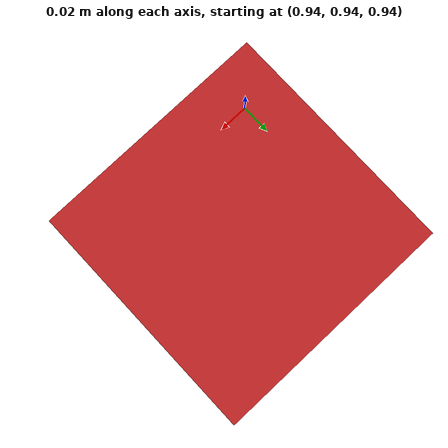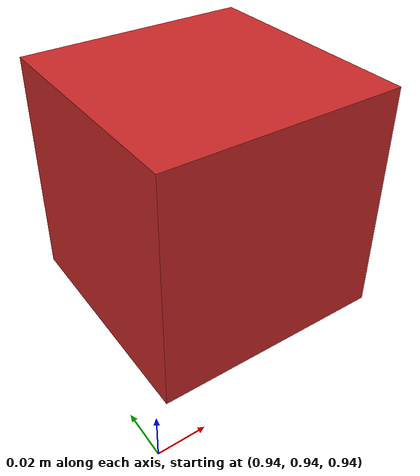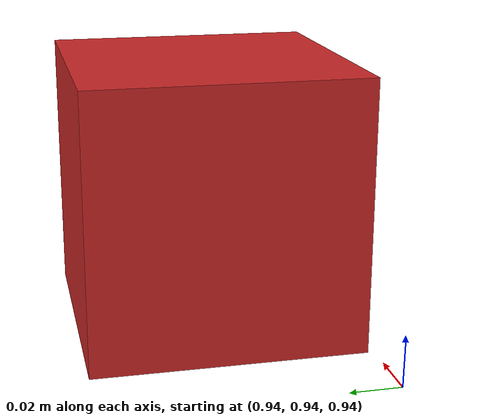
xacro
<?xml version="1.0"?>
<robot xmlns:xacro="http://www.ros.org/wiki/xacro" name="rgbcamera">
  <link name="world"/>

  <joint name="rgb_camera_joint" type="fixed">
    <origin xyz="1 1 1" rpy="0 0 0"/>
    <parent link="world"/>
    <child link="rgb_camera_link"/>
  </joint>

  <link name="rgb_camera_link">
    <visual>
      <origin xyz="0 0 0" rpy="0 0 0"/>
      <geometry>
        <box size="0.1 0.1 0.1"/>
      </geometry>
      <material name="red"/>
    </visual>

    <inertial>
      <mass value="1e-5"/>
      <origin xyz="0 0 0" rpy="0 0 0"/>
      <inertia ixx="1e-6" ixy="0" ixz="0" iyy="1e-6" iyz="0" izz="1e-6"/>
    </inertial>

    <collision>
      <origin xyz="0 0 0" rpy="0 0 0"/>
      <geometry>
        <box size="0.1 0.1 0.1"/>
      </geometry>
    </collision>
  </link>

  <gazebo reference="rgb_camera_link">
    <material>Gazebo/Orange</material>
    <sensor type="camera" name="camera1">
      <update_rate>30.0</update_rate>
      <camera name="head">
        <horizontal_fov>1.3962634</horizontal_fov>
        <image>
          <width>800</width>
          <height>800</height>
          <format>R8G8B8</format>
        </image>
        <clip>
          <near>0.02</near>
          <far>300</far>
        </clip>
        <noise>
          <type>gaussian</type>
          <!-- Noise is sampled independently per pixel on each frame.
            That pixel's noise value is added to each of its color
          channels, which at that point lie in the range [0,1]. -->
          <mean>0.0</mean>
          <stddev>0.007</stddev>
        </noise>
      </camera>
      <plugin name="camera_controller" filename="libgazebo_ros_camera.so">
        <alwaysOn>true</alwaysOn>
        <updateRate>0.0</updateRate>
        <cameraName>/rgb_camera</cameraName>
        <imageTopicName>image_raw</imageTopicName>
        <cameraInfoTopicName>camera_info_nominal</cameraInfoTopicName>
        <frameName>rgb_camera_link</frameName>
        <hackBaseline>0.0</hackBaseline>
        <distortionK1>0.0</distortionK1>
        <distortionK2>0.0</distortionK2>
        <distortionK3>0.0</distortionK3>
        <distortionT1>0.0</distortionT1>
        <distortionT2>0.0</distortionT2>
      </plugin>
    </sensor>
  </gazebo>
</robot>
